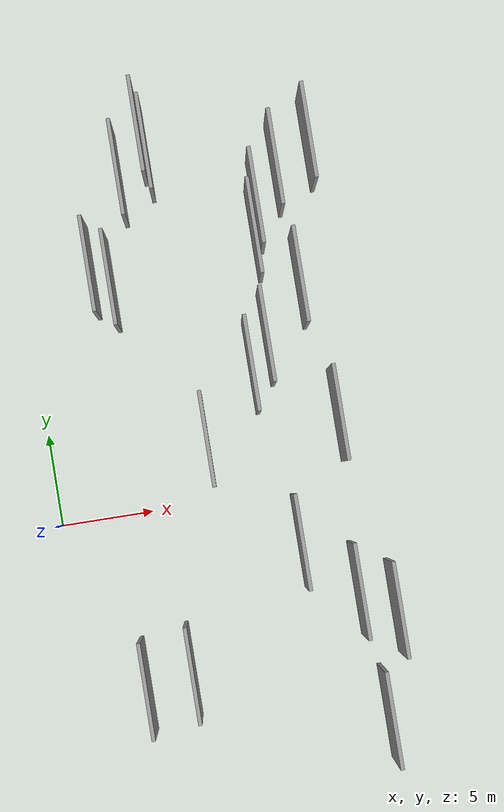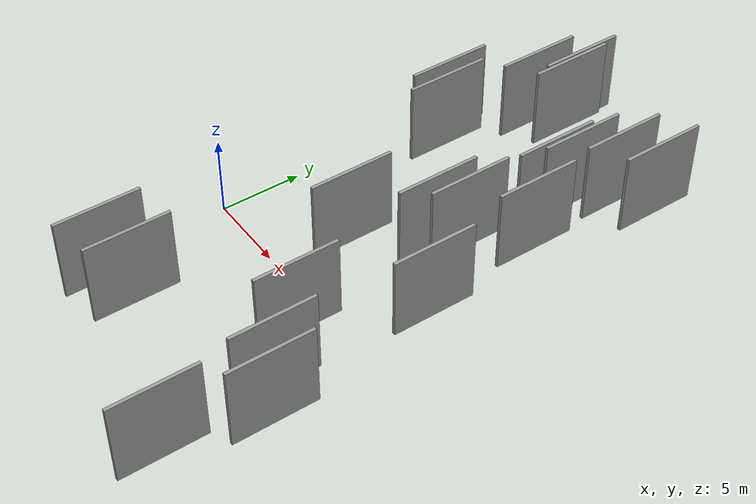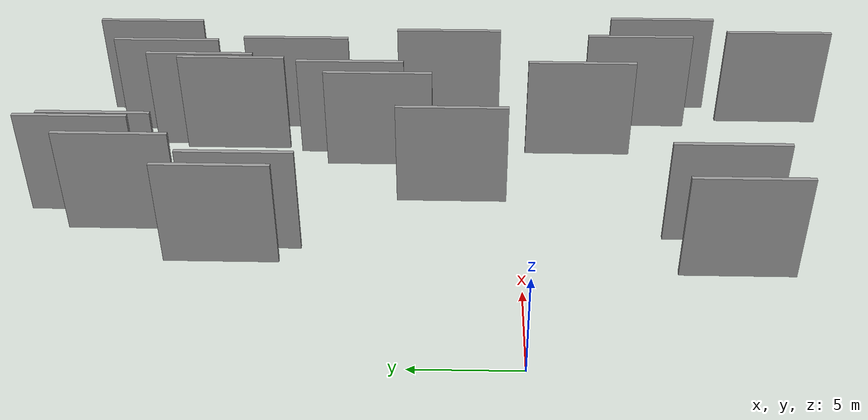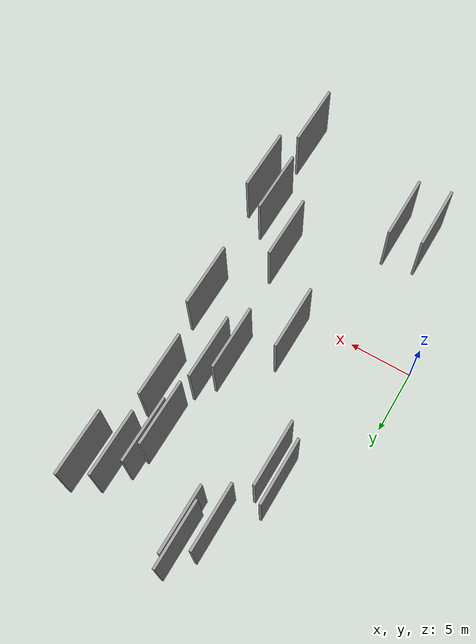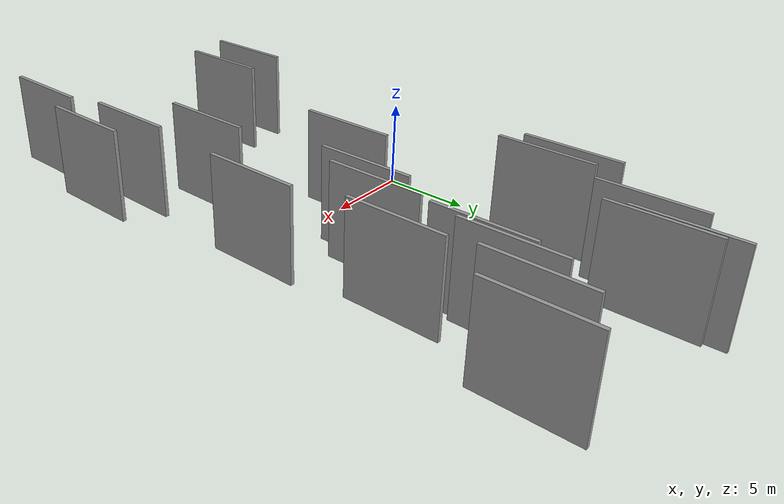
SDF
<sdf version="1.6">
 <world name="default">
  <scene>
   <sky><clouds><speed>12</speed></clouds></sky>
   <ambient>0.4 0.4 0.4 1</ambient>
   <background>0.7 0.7 0.7 1</background>
   <shadows>1</shadows>
  </scene>
  <gravity>0 0 -9.8066</gravity>
  <magnetic_field>6e-06 2.3e-05 -4.2e-05</magnetic_field>
  <physics default="0" name="default_physics" type="ode">
   <ode>
    <solver>
     <type>quick</type>
     <iters>10</iters>
     <sor>1.0</sor>
     <use_dynamic_moi_rescaling>0</use_dynamic_moi_rescaling>
    </solver>
    <constraints>
     <cfm>0</cfm>
     <erp>0.2</erp>
     <contact_max_correcting_vel>100</contact_max_correcting_vel>
     <contact_surface_layer>0.001</contact_surface_layer>
    </constraints>
   </ode>
   <max_step_size>0.004</max_step_size>
   <real_time_factor>1</real_time_factor>
   <real_time_update_rate>250</real_time_update_rate>
  </physics>
  <light name="sun" type="directional">
   <pose>0 0 10 0 0 0</pose>
   <diffuse>0.8 0.8 0.8 1</diffuse>
   <specular>0.2 0.2 0.2 1</specular>
   <attenuation>
    <range>1000</range>
    <constant>0.9</constant>
    <linear>0.01</linear>
    <quadratic>0.001</quadratic>
   </attenuation>
   <direction>-0.5 0.1 -0.9</direction>
  </light>
  <model name="grey_wall_1">
   <static>1</static>
   <pose>15.6432 -12.4000 2.5 0.000000 0.000000 1.570796</pose>
   <link name="link">
    <pose>0 0 2.50 0 0 0</pose>
    <collision name="collision"><geometry><box><size>5.00 0.2 5.00</size></box></geometry></collision>
    <visual name="visual">
     <cast_shadows>0</cast_shadows>
     <geometry><box><size>5.00 0.2 5.00</size></box></geometry>
     <material>
      <script>
       <uri>model://grey_wall/materials/scripts</uri>
       <uri>model://grey_wall/materials/textures</uri>
       <name>vrc/grey_wall</name>
      </script>
     </material>
    </visual>
   </link>
  </model>
  <model name="grey_wall_2">
   <static>1</static>
   <pose>16.8966 -6.9400 2.5 0.000000 0.000000 1.570796</pose>
   <link name="link">
    <pose>0 0 2.50 0 0 0</pose>
    <collision name="collision"><geometry><box><size>5.00 0.2 5.00</size></box></geometry></collision>
    <visual name="visual">
     <cast_shadows>0</cast_shadows>
     <geometry><box><size>5.00 0.2 5.00</size></box></geometry>
     <material>
      <script>
       <uri>model://grey_wall/materials/scripts</uri>
       <uri>model://grey_wall/materials/textures</uri>
       <name>vrc/grey_wall</name>
      </script>
     </material>
    </visual>
   </link>
  </model>
  <model name="grey_wall_3">
   <static>1</static>
   <pose>6.1856 17.7484 2.5 0.000000 0.000000 1.570796</pose>
   <link name="link">
    <pose>0 0 2.50 0 0 0</pose>
    <collision name="collision"><geometry><box><size>5.00 0.2 5.00</size></box></geometry></collision>
    <visual name="visual">
     <cast_shadows>0</cast_shadows>
     <geometry><box><size>5.00 0.2 5.00</size></box></geometry>
     <material>
      <script>
       <uri>model://grey_wall/materials/scripts</uri>
       <uri>model://grey_wall/materials/textures</uri>
       <name>vrc/grey_wall</name>
      </script>
     </material>
    </visual>
   </link>
  </model>
  <model name="grey_wall_4">
   <static>1</static>
   <pose>14.3519 16.9778 2.5 0.000000 0.000000 1.570796</pose>
   <link name="link">
    <pose>0 0 2.50 0 0 0</pose>
    <collision name="collision"><geometry><box><size>5.00 0.2 5.00</size></box></geometry></collision>
    <visual name="visual">
     <cast_shadows>0</cast_shadows>
     <geometry><box><size>5.00 0.2 5.00</size></box></geometry>
     <material>
      <script>
       <uri>model://grey_wall/materials/scripts</uri>
       <uri>model://grey_wall/materials/textures</uri>
       <name>vrc/grey_wall</name>
      </script>
     </material>
    </visual>
   </link>
  </model>
  <model name="grey_wall_5">
   <static>1</static>
   <pose>13.0590 15.1703 2.5 0.000000 0.000000 1.570796</pose>
   <link name="link">
    <pose>0 0 2.50 0 0 0</pose>
    <collision name="collision"><geometry><box><size>5.00 0.2 5.00</size></box></geometry></collision>
    <visual name="visual">
     <cast_shadows>0</cast_shadows>
     <geometry><box><size>5.00 0.2 5.00</size></box></geometry>
     <material>
      <script>
       <uri>model://grey_wall/materials/scripts</uri>
       <uri>model://grey_wall/materials/textures</uri>
       <name>vrc/grey_wall</name>
      </script>
     </material>
    </visual>
   </link>
  </model>
  <model name="grey_wall_6">
   <static>1</static>
   <pose>15.1109 -5.7030 2.5 0.000000 0.000000 1.570796</pose>
   <link name="link">
    <pose>0 0 2.50 0 0 0</pose>
    <collision name="collision"><geometry><box><size>5.00 0.2 5.00</size></box></geometry></collision>
    <visual name="visual">
     <cast_shadows>0</cast_shadows>
     <geometry><box><size>5.00 0.2 5.00</size></box></geometry>
     <material>
      <script>
       <uri>model://grey_wall/materials/scripts</uri>
       <uri>model://grey_wall/materials/textures</uri>
       <name>vrc/grey_wall</name>
      </script>
     </material>
    </visual>
   </link>
  </model>
  <model name="grey_wall_7">
   <static>1</static>
   <pose>4.9079 12.2312 2.5 0.000000 0.000000 1.570796</pose>
   <link name="link">
    <pose>0 0 2.50 0 0 0</pose>
    <collision name="collision"><geometry><box><size>5.00 0.2 5.00</size></box></geometry></collision>
    <visual name="visual">
     <cast_shadows>0</cast_shadows>
     <geometry><box><size>5.00 0.2 5.00</size></box></geometry>
     <material>
      <script>
       <uri>model://grey_wall/materials/scripts</uri>
       <uri>model://grey_wall/materials/textures</uri>
       <name>vrc/grey_wall</name>
      </script>
     </material>
    </visual>
   </link>
  </model>
  <model name="grey_wall_8">
   <static>1</static>
   <pose>12.5357 -2.7445 2.5 0.000000 0.000000 1.570796</pose>
   <link name="link">
    <pose>0 0 2.50 0 0 0</pose>
    <collision name="collision"><geometry><box><size>5.00 0.2 5.00</size></box></geometry></collision>
    <visual name="visual">
     <cast_shadows>0</cast_shadows>
     <geometry><box><size>5.00 0.2 5.00</size></box></geometry>
     <material>
      <script>
       <uri>model://grey_wall/materials/scripts</uri>
       <uri>model://grey_wall/materials/textures</uri>
       <name>vrc/grey_wall</name>
      </script>
     </material>
    </visual>
   </link>
  </model>
  <model name="grey_wall_9">
   <static>1</static>
   <pose>16.2596 18.0469 2.5 0.000000 0.000000 1.570796</pose>
   <link name="link">
    <pose>0 0 2.50 0 0 0</pose>
    <collision name="collision"><geometry><box><size>5.00 0.2 5.00</size></box></geometry></collision>
    <visual name="visual">
     <cast_shadows>0</cast_shadows>
     <geometry><box><size>5.00 0.2 5.00</size></box></geometry>
     <material>
      <script>
       <uri>model://grey_wall/materials/scripts</uri>
       <uri>model://grey_wall/materials/textures</uri>
       <name>vrc/grey_wall</name>
      </script>
     </material>
    </visual>
   </link>
  </model>
  <model name="grey_wall_10">
   <static>1</static>
   <pose>3.4491 -8.9533 2.5 0.000000 0.000000 1.570796</pose>
   <link name="link">
    <pose>0 0 2.50 0 0 0</pose>
    <collision name="collision"><geometry><box><size>5.00 0.2 5.00</size></box></geometry></collision>
    <visual name="visual">
     <cast_shadows>0</cast_shadows>
     <geometry><box><size>5.00 0.2 5.00</size></box></geometry>
     <material>
      <script>
       <uri>model://grey_wall/materials/scripts</uri>
       <uri>model://grey_wall/materials/textures</uri>
       <name>vrc/grey_wall</name>
      </script>
     </material>
    </visual>
   </link>
  </model>
  <model name="grey_wall_11">
   <static>1</static>
   <pose>3.9485 13.0780 2.5 0.000000 0.000000 1.570796</pose>
   <link name="link">
    <pose>0 0 2.50 0 0 0</pose>
    <collision name="collision"><geometry><box><size>5.00 0.2 5.00</size></box></geometry></collision>
    <visual name="visual">
     <cast_shadows>0</cast_shadows>
     <geometry><box><size>5.00 0.2 5.00</size></box></geometry>
     <material>
      <script>
       <uri>model://grey_wall/materials/scripts</uri>
       <uri>model://grey_wall/materials/textures</uri>
       <name>vrc/grey_wall</name>
      </script>
     </material>
    </visual>
   </link>
  </model>
  <model name="grey_wall_12">
   <static>1</static>
   <pose>8.5485 3.2471 2.5 0.000000 0.000000 1.570796</pose>
   <link name="link">
    <pose>0 0 2.50 0 0 0</pose>
    <collision name="collision"><geometry><box><size>5.00 0.2 5.00</size></box></geometry></collision>
    <visual name="visual">
     <cast_shadows>0</cast_shadows>
     <geometry><box><size>5.00 0.2 5.00</size></box></geometry>
     <material>
      <script>
       <uri>model://grey_wall/materials/scripts</uri>
       <uri>model://grey_wall/materials/textures</uri>
       <name>vrc/grey_wall</name>
      </script>
     </material>
    </visual>
   </link>
  </model>
  <model name="grey_wall_13">
   <static>1</static>
   <pose>7.8095 18.8484 2.5 0.000000 0.000000 1.570796</pose>
   <link name="link">
    <pose>0 0 2.50 0 0 0</pose>
    <collision name="collision"><geometry><box><size>5.00 0.2 5.00</size></box></geometry></collision>
    <visual name="visual">
     <cast_shadows>0</cast_shadows>
     <geometry><box><size>5.00 0.2 5.00</size></box></geometry>
     <material>
      <script>
       <uri>model://grey_wall/materials/scripts</uri>
       <uri>model://grey_wall/materials/textures</uri>
       <name>vrc/grey_wall</name>
      </script>
     </material>
    </visual>
   </link>
  </model>
  <model name="grey_wall_14">
   <static>1</static>
   <pose>11.4477 6.7056 2.5 0.000000 0.000000 1.570796</pose>
   <link name="link">
    <pose>0 0 2.50 0 0 0</pose>
    <collision name="collision"><geometry><box><size>5.00 0.2 5.00</size></box></geometry></collision>
    <visual name="visual">
     <cast_shadows>0</cast_shadows>
     <geometry><box><size>5.00 0.2 5.00</size></box></geometry>
     <material>
      <script>
       <uri>model://grey_wall/materials/scripts</uri>
       <uri>model://grey_wall/materials/textures</uri>
       <name>vrc/grey_wall</name>
      </script>
     </material>
    </visual>
   </link>
  </model>
  <model name="grey_wall_15">
   <static>1</static>
   <pose>12.7252 13.6570 2.5 0.000000 0.000000 1.570796</pose>
   <link name="link">
    <pose>0 0 2.50 0 0 0</pose>
    <collision name="collision"><geometry><box><size>5.00 0.2 5.00</size></box></geometry></collision>
    <visual name="visual">
     <cast_shadows>0</cast_shadows>
     <geometry><box><size>5.00 0.2 5.00</size></box></geometry>
     <material>
      <script>
       <uri>model://grey_wall/materials/scripts</uri>
       <uri>model://grey_wall/materials/textures</uri>
       <name>vrc/grey_wall</name>
      </script>
     </material>
    </visual>
   </link>
  </model>
  <model name="grey_wall_16">
   <static>1</static>
   <pose>12.4674 8.0561 2.5 0.000000 0.000000 1.570796</pose>
   <link name="link">
    <pose>0 0 2.50 0 0 0</pose>
    <collision name="collision"><geometry><box><size>5.00 0.2 5.00</size></box></geometry></collision>
    <visual name="visual">
     <cast_shadows>0</cast_shadows>
     <geometry><box><size>5.00 0.2 5.00</size></box></geometry>
     <material>
      <script>
       <uri>model://grey_wall/materials/scripts</uri>
       <uri>model://grey_wall/materials/textures</uri>
       <name>vrc/grey_wall</name>
      </script>
     </material>
    </visual>
   </link>
  </model>
  <model name="grey_wall_17">
   <static>1</static>
   <pose>15.5358 3.4966 2.5 0.000000 0.000000 1.570796</pose>
   <link name="link">
    <pose>0 0 2.50 0 0 0</pose>
    <collision name="collision"><geometry><box><size>5.00 0.2 5.00</size></box></geometry></collision>
    <visual name="visual">
     <cast_shadows>0</cast_shadows>
     <geometry><box><size>5.00 0.2 5.00</size></box></geometry>
     <material>
      <script>
       <uri>model://grey_wall/materials/scripts</uri>
       <uri>model://grey_wall/materials/textures</uri>
       <name>vrc/grey_wall</name>
      </script>
     </material>
    </visual>
   </link>
  </model>
  <model name="grey_wall_18">
   <static>1</static>
   <pose>7.5527 19.7940 2.5 0.000000 0.000000 1.570796</pose>
   <link name="link">
    <pose>0 0 2.50 0 0 0</pose>
    <collision name="collision"><geometry><box><size>5.00 0.2 5.00</size></box></geometry></collision>
    <visual name="visual">
     <cast_shadows>0</cast_shadows>
     <geometry><box><size>5.00 0.2 5.00</size></box></geometry>
     <material>
      <script>
       <uri>model://grey_wall/materials/scripts</uri>
       <uri>model://grey_wall/materials/textures</uri>
       <name>vrc/grey_wall</name>
      </script>
     </material>
    </visual>
   </link>
  </model>
  <model name="grey_wall_19">
   <static>1</static>
   <pose>5.9055 -8.5499 2.5 0.000000 0.000000 1.570796</pose>
   <link name="link">
    <pose>0 0 2.50 0 0 0</pose>
    <collision name="collision"><geometry><box><size>5.00 0.2 5.00</size></box></geometry></collision>
    <visual name="visual">
     <cast_shadows>0</cast_shadows>
     <geometry><box><size>5.00 0.2 5.00</size></box></geometry>
     <material>
      <script>
       <uri>model://grey_wall/materials/scripts</uri>
       <uri>model://grey_wall/materials/textures</uri>
       <name>vrc/grey_wall</name>
      </script>
     </material>
    </visual>
   </link>
  </model>
  <model name="grey_wall_20">
   <static>1</static>
   <pose>14.6635 10.8099 2.5 0.000000 0.000000 1.570796</pose>
   <link name="link">
    <pose>0 0 2.50 0 0 0</pose>
    <collision name="collision"><geometry><box><size>5.00 0.2 5.00</size></box></geometry></collision>
    <visual name="visual">
     <cast_shadows>0</cast_shadows>
     <geometry><box><size>5.00 0.2 5.00</size></box></geometry>
     <material>
      <script>
       <uri>model://grey_wall/materials/scripts</uri>
       <uri>model://grey_wall/materials/textures</uri>
       <name>vrc/grey_wall</name>
      </script>
     </material>
    </visual>
   </link>
  </model>
 </world>
</sdf>
